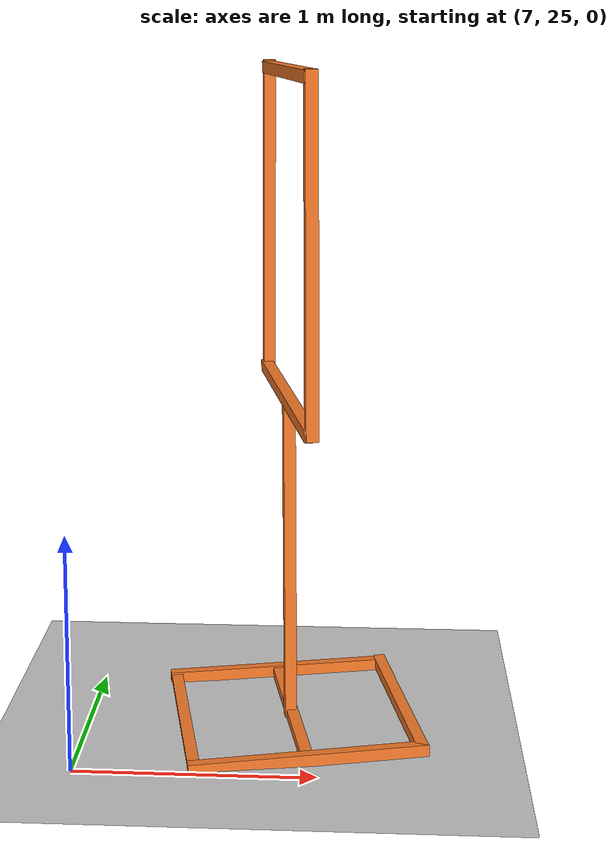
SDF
<sdf version="1.6">
 <world name="default">
  <model name="ground_plane">
   <static>1</static>
   <link name="link">
    <collision name="collision">
     <geometry><plane><normal>0 0 1</normal><size>100 100</size></plane></geometry>
     <surface><friction><ode><mu>100</mu><mu2>50</mu2></ode></friction></surface>
    </collision>
    <visual name="visual">
     <cast_shadows>0</cast_shadows>
     <geometry><plane><normal>0 0 1</normal><size>100 100</size></plane></geometry>
     <material>
      <script><uri>file://media/materials/scripts/gazebo.material</uri><name>Gazebo/Grey</name></script>
     </material>
    </visual>
    <velocity_decay><linear>0</linear><angular>0</angular></velocity_decay>
   </link>
  </model>
  <model name="closed_gate_clone_clone_clone_3_clone">
   <link name="link">
    <inertial>
     <mass>1</mass>
     <inertia>
      <ixx>0.166667</ixx>
      <ixy>0</ixy>
      <ixz>0</ixz>
      <iyy>0.166667</iyy>
      <iyz>0</iyz>
      <izz>0.166667</izz>
     </inertia>
    </inertial>
    <pose>0.404756 -0.715724 1.41623 0 -0 0</pose>
    <visual name="visual">
     <geometry><box><size>0.05 0.05 1.4</size></box></geometry>
     <material>
      <script><name>Gazebo/Grey</name><uri>file://media/materials/scripts/gazebo.material</uri></script>
      <shader type="vertex"><normal_map>__default__</normal_map></shader>
      <ambient>0.976 0.484 0.164 1</ambient>
      <diffuse>0.976 0.484 0.164 1</diffuse>
      <specular>0.01 0.01 0.01 1</specular>
      <emissive>0 0 0 1</emissive>
     </material>
    </visual>
    <collision name="collision">
     <geometry><box><size>0.05 0.05 1.4</size></box></geometry>
     <surface>
      <friction>
       <ode><mu>1</mu><mu2>1</mu2><fdir1>0 0 0</fdir1><slip1>0</slip1><slip2>0</slip2></ode>
       <torsional>
        <coefficient>1</coefficient>
        <patch_radius>0</patch_radius>
        <surface_radius>0</surface_radius>
        <use_patch_radius>1</use_patch_radius>
        <ode><slip>0</slip></ode>
       </torsional>
      </friction>
      <bounce><restitution_coefficient>0</restitution_coefficient><threshold>1e+06</threshold></bounce>
      <contact>
       <collide_without_contact>0</collide_without_contact>
       <collide_without_contact_bitmask>1</collide_without_contact_bitmask>
       <collide_bitmask>1</collide_bitmask>
       <ode>
        <soft_cfm>0</soft_cfm>
        <soft_erp>0.2</soft_erp>
        <kp>1e+13</kp>
        <kd>1</kd>
        <max_vel>0.01</max_vel>
        <min_depth>0</min_depth>
       </ode>
       <bullet>
        <split_impulse>1</split_impulse>
        <split_impulse_penetration_threshold>-0.01</split_impulse_penetration_threshold>
        <soft_cfm>0</soft_cfm>
        <soft_erp>0.2</soft_erp>
        <kp>1e+13</kp>
        <kd>1</kd>
       </bullet>
      </contact>
     </surface>
    </collision>
   </link>
   <link name="link_clone_0_clone_0">
    <inertial>
     <mass>1</mass>
     <inertia>
      <ixx>0.166667</ixx>
      <ixy>0</ixy>
      <ixz>0</ixz>
      <iyy>0.166667</iyy>
      <iyz>0</iyz>
      <izz>0.166667</izz>
     </inertia>
    </inertial>
    <pose>1.11096 -0.693594 -0.667388 -1.57955 0.044957 -1.56415</pose>
    <visual name="visual">
     <geometry><box><size>0.05 0.05 1</size></box></geometry>
     <material>
      <script><name>Gazebo/Grey</name><uri>file://media/materials/scripts/gazebo.material</uri></script>
      <shader type="vertex"><normal_map>__default__</normal_map></shader>
      <ambient>0.976 0.484 0.164 1</ambient>
      <diffuse>0.976 0.484 0.164 1</diffuse>
      <specular>0.01 0.01 0.01 1</specular>
      <emissive>0 0 0 1</emissive>
     </material>
    </visual>
    <collision name="collision">
     <geometry><box><size>0.05 0.05 1</size></box></geometry>
     <surface>
      <friction>
       <ode><mu>1</mu><mu2>1</mu2><fdir1>0 0 0</fdir1><slip1>0</slip1><slip2>0</slip2></ode>
       <torsional>
        <coefficient>1</coefficient>
        <patch_radius>0</patch_radius>
        <surface_radius>0</surface_radius>
        <use_patch_radius>1</use_patch_radius>
        <ode><slip>0</slip></ode>
       </torsional>
      </friction>
      <bounce><restitution_coefficient>0</restitution_coefficient><threshold>1e+06</threshold></bounce>
      <contact>
       <collide_without_contact>0</collide_without_contact>
       <collide_without_contact_bitmask>1</collide_without_contact_bitmask>
       <collide_bitmask>1</collide_bitmask>
       <ode>
        <soft_cfm>0</soft_cfm>
        <soft_erp>0.2</soft_erp>
        <kp>1e+13</kp>
        <kd>1</kd>
        <max_vel>0.01</max_vel>
        <min_depth>0</min_depth>
       </ode>
       <bullet>
        <split_impulse>1</split_impulse>
        <split_impulse_penetration_threshold>-0.01</split_impulse_penetration_threshold>
        <soft_cfm>0</soft_cfm>
        <soft_erp>0.2</soft_erp>
        <kp>1e+13</kp>
        <kd>1</kd>
       </bullet>
      </contact>
     </surface>
    </collision>
   </link>
   <link name="link_clone_0_clone_0_clone">
    <inertial>
     <mass>1</mass>
     <inertia>
      <ixx>0.166667</ixx>
      <ixy>0</ixy>
      <ixz>0</ixz>
      <iyy>0.166667</iyy>
      <iyz>0</iyz>
      <izz>0.166667</izz>
     </inertia>
    </inertial>
    <pose>0.637485 -0.695511 -0.656732 -1.55146 -0.019345 0.017432</pose>
    <visual name="visual">
     <geometry><box><size>0.05 0.05 1</size></box></geometry>
     <material>
      <script><name>Gazebo/Grey</name><uri>file://media/materials/scripts/gazebo.material</uri></script>
      <shader type="vertex"><normal_map>__default__</normal_map></shader>
      <ambient>0.976 0.484 0.164 1</ambient>
      <diffuse>0.976 0.484 0.164 1</diffuse>
      <specular>0.01 0.01 0.01 1</specular>
      <emissive>0 0 0 1</emissive>
     </material>
    </visual>
    <collision name="collision">
     <geometry><box><size>0.05 0.05 1</size></box></geometry>
     <surface>
      <friction>
       <ode><mu>1</mu><mu2>1</mu2><fdir1>0 0 0</fdir1><slip1>0</slip1><slip2>0</slip2></ode>
       <torsional>
        <coefficient>1</coefficient>
        <patch_radius>0</patch_radius>
        <surface_radius>0</surface_radius>
        <use_patch_radius>1</use_patch_radius>
        <ode><slip>0</slip></ode>
       </torsional>
      </friction>
      <bounce><restitution_coefficient>0</restitution_coefficient><threshold>1e+06</threshold></bounce>
      <contact>
       <collide_without_contact>0</collide_without_contact>
       <collide_without_contact_bitmask>1</collide_without_contact_bitmask>
       <collide_bitmask>1</collide_bitmask>
       <ode>
        <soft_cfm>0</soft_cfm>
        <soft_erp>0.2</soft_erp>
        <kp>1e+13</kp>
        <kd>1</kd>
        <max_vel>0.01</max_vel>
        <min_depth>0</min_depth>
       </ode>
       <bullet>
        <split_impulse>1</split_impulse>
        <split_impulse_penetration_threshold>-0.01</split_impulse_penetration_threshold>
        <soft_cfm>0</soft_cfm>
        <soft_erp>0.2</soft_erp>
        <kp>1e+13</kp>
        <kd>1</kd>
       </bullet>
      </contact>
     </surface>
    </collision>
   </link>
   <link name="link_clone_0_clone_0_clone_0">
    <inertial>
     <mass>1</mass>
     <inertia>
      <ixx>0.166667</ixx>
      <ixy>0</ixy>
      <ixz>0</ixz>
      <iyy>0.166667</iyy>
      <iyz>0</iyz>
      <izz>0.166667</izz>
     </inertia>
    </inertial>
    <pose>1.12077 -1.16283 -0.677317 -1.57839 0.053451 -1.56287</pose>
    <visual name="visual">
     <geometry><box><size>0.05 0.05 1</size></box></geometry>
     <material>
      <script><name>Gazebo/Grey</name><uri>file://media/materials/scripts/gazebo.material</uri></script>
      <shader type="vertex"><normal_map>__default__</normal_map></shader>
      <ambient>0.976 0.484 0.164 1</ambient>
      <diffuse>0.976 0.484 0.164 1</diffuse>
      <specular>0.01 0.01 0.01 1</specular>
      <emissive>0 0 0 1</emissive>
     </material>
    </visual>
    <collision name="collision">
     <geometry><box><size>0.05 0.05 1</size></box></geometry>
     <surface>
      <friction>
       <ode><mu>1</mu><mu2>1</mu2><fdir1>0 0 0</fdir1><slip1>0</slip1><slip2>0</slip2></ode>
       <torsional>
        <coefficient>1</coefficient>
        <patch_radius>0</patch_radius>
        <surface_radius>0</surface_radius>
        <use_patch_radius>1</use_patch_radius>
        <ode><slip>0</slip></ode>
       </torsional>
      </friction>
      <bounce><restitution_coefficient>0</restitution_coefficient><threshold>1e+06</threshold></bounce>
      <contact>
       <collide_without_contact>0</collide_without_contact>
       <collide_without_contact_bitmask>1</collide_without_contact_bitmask>
       <collide_bitmask>1</collide_bitmask>
       <ode>
        <soft_cfm>0</soft_cfm>
        <soft_erp>0.2</soft_erp>
        <kp>1e+13</kp>
        <kd>1</kd>
        <max_vel>0.01</max_vel>
        <min_depth>0</min_depth>
       </ode>
       <bullet>
        <split_impulse>1</split_impulse>
        <split_impulse_penetration_threshold>-0.01</split_impulse_penetration_threshold>
        <soft_cfm>0</soft_cfm>
        <soft_erp>0.2</soft_erp>
        <kp>1e+13</kp>
        <kd>1</kd>
       </bullet>
      </contact>
     </surface>
    </collision>
   </link>
   <link name="link_clone_0_clone_0_clone_2">
    <inertial>
     <mass>1</mass>
     <inertia>
      <ixx>0.166667</ixx>
      <ixy>0</ixy>
      <ixz>0</ixz>
      <iyy>0.166667</iyy>
      <iyz>0</iyz>
      <izz>0.166667</izz>
     </inertia>
    </inertial>
    <pose>1.10088 -0.214462 -0.645898 -1.57451 0.053447 -1.56287</pose>
    <visual name="visual">
     <geometry><box><size>0.05 0.05 1</size></box></geometry>
     <material>
      <script><name>Gazebo/Grey</name><uri>file://media/materials/scripts/gazebo.material</uri></script>
      <shader type="vertex"><normal_map>__default__</normal_map></shader>
      <ambient>0.976 0.484 0.164 1</ambient>
      <diffuse>0.976 0.484 0.164 1</diffuse>
      <specular>0.01 0.01 0.01 1</specular>
      <emissive>0 0 0 1</emissive>
     </material>
    </visual>
    <collision name="collision">
     <geometry><box><size>0.05 0.05 1</size></box></geometry>
     <surface>
      <friction>
       <ode><mu>1</mu><mu2>1</mu2><fdir1>0 0 0</fdir1><slip1>0</slip1><slip2>0</slip2></ode>
       <torsional>
        <coefficient>1</coefficient>
        <patch_radius>0</patch_radius>
        <surface_radius>0</surface_radius>
        <use_patch_radius>1</use_patch_radius>
        <ode><slip>0</slip></ode>
       </torsional>
      </friction>
      <bounce><restitution_coefficient>0</restitution_coefficient><threshold>1e+06</threshold></bounce>
      <contact>
       <collide_without_contact>0</collide_without_contact>
       <collide_without_contact_bitmask>1</collide_without_contact_bitmask>
       <collide_bitmask>1</collide_bitmask>
       <ode>
        <soft_cfm>0</soft_cfm>
        <soft_erp>0.2</soft_erp>
        <kp>1e+13</kp>
        <kd>1</kd>
        <max_vel>0.01</max_vel>
        <min_depth>0</min_depth>
       </ode>
       <bullet>
        <split_impulse>1</split_impulse>
        <split_impulse_penetration_threshold>-0.01</split_impulse_penetration_threshold>
        <soft_cfm>0</soft_cfm>
        <soft_erp>0.2</soft_erp>
        <kp>1e+13</kp>
        <kd>1</kd>
       </bullet>
      </contact>
     </surface>
    </collision>
   </link>
   <link name="link_clone_0_clone_0_clone_clone">
    <inertial>
     <mass>1</mass>
     <inertia>
      <ixx>0.166667</ixx>
      <ixy>0</ixy>
      <ixz>0</ixz>
      <iyy>0.166667</iyy>
      <iyz>0</iyz>
      <izz>0.166667</izz>
     </inertia>
    </inertial>
    <pose>1.59453 -0.684923 -0.663241 -1.53838 -0.023075 0.018345</pose>
    <visual name="visual">
     <geometry><box><size>0.05 0.05 1</size></box></geometry>
     <material>
      <script><name>Gazebo/Grey</name><uri>file://media/materials/scripts/gazebo.material</uri></script>
      <shader type="vertex"><normal_map>__default__</normal_map></shader>
      <ambient>0.976 0.484 0.164 1</ambient>
      <diffuse>0.976 0.484 0.164 1</diffuse>
      <specular>0.01 0.01 0.01 1</specular>
      <emissive>0 0 0 1</emissive>
     </material>
    </visual>
    <collision name="collision">
     <geometry><box><size>0.05 0.05 1</size></box></geometry>
     <surface>
      <friction>
       <ode><mu>1</mu><mu2>1</mu2><fdir1>0 0 0</fdir1><slip1>0</slip1><slip2>0</slip2></ode>
       <torsional>
        <coefficient>1</coefficient>
        <patch_radius>0</patch_radius>
        <surface_radius>0</surface_radius>
        <use_patch_radius>1</use_patch_radius>
        <ode><slip>0</slip></ode>
       </torsional>
      </friction>
      <bounce><restitution_coefficient>0</restitution_coefficient><threshold>1e+06</threshold></bounce>
      <contact>
       <collide_without_contact>0</collide_without_contact>
       <collide_without_contact_bitmask>1</collide_without_contact_bitmask>
       <collide_bitmask>1</collide_bitmask>
       <ode>
        <soft_cfm>0</soft_cfm>
        <soft_erp>0.2</soft_erp>
        <kp>1e+13</kp>
        <kd>1</kd>
        <max_vel>0.01</max_vel>
        <min_depth>0</min_depth>
       </ode>
       <bullet>
        <split_impulse>1</split_impulse>
        <split_impulse_penetration_threshold>-0.01</split_impulse_penetration_threshold>
        <soft_cfm>0</soft_cfm>
        <soft_erp>0.2</soft_erp>
        <kp>1e+13</kp>
        <kd>1</kd>
       </bullet>
      </contact>
     </surface>
    </collision>
   </link>
   <link name="link_clone_0_clone_1">
    <inertial>
     <mass>1</mass>
     <inertia>
      <ixx>0.166667</ixx>
      <ixy>0</ixy>
      <ixz>0</ixz>
      <iyy>0.166667</iyy>
      <iyz>0</iyz>
      <izz>0.166667</izz>
     </inertia>
    </inertial>
    <pose>1.08198 -0.717602 0.744079 -1.56201 0.04483 -1.56244</pose>
    <visual name="visual">
     <geometry><box><size>0.05 0.05 1.4</size></box></geometry>
     <material>
      <script><name>Gazebo/Grey</name><uri>file://media/materials/scripts/gazebo.material</uri></script>
      <shader type="vertex"><normal_map>__default__</normal_map></shader>
      <ambient>0.976 0.484 0.164 1</ambient>
      <diffuse>0.976 0.484 0.164 1</diffuse>
      <specular>0.01 0.01 0.01 1</specular>
      <emissive>0 0 0 1</emissive>
     </material>
    </visual>
    <collision name="collision">
     <geometry><box><size>0.05 0.05 1.4</size></box></geometry>
     <surface>
      <friction>
       <ode><mu>1</mu><mu2>1</mu2><fdir1>0 0 0</fdir1><slip1>0</slip1><slip2>0</slip2></ode>
       <torsional>
        <coefficient>1</coefficient>
        <patch_radius>0</patch_radius>
        <surface_radius>0</surface_radius>
        <use_patch_radius>1</use_patch_radius>
        <ode><slip>0</slip></ode>
       </torsional>
      </friction>
      <bounce><restitution_coefficient>0</restitution_coefficient><threshold>1e+06</threshold></bounce>
      <contact>
       <collide_without_contact>0</collide_without_contact>
       <collide_without_contact_bitmask>1</collide_without_contact_bitmask>
       <collide_bitmask>1</collide_bitmask>
       <ode>
        <soft_cfm>0</soft_cfm>
        <soft_erp>0.2</soft_erp>
        <kp>1e+13</kp>
        <kd>1</kd>
        <max_vel>0.01</max_vel>
        <min_depth>0</min_depth>
       </ode>
       <bullet>
        <split_impulse>1</split_impulse>
        <split_impulse_penetration_threshold>-0.01</split_impulse_penetration_threshold>
        <soft_cfm>0</soft_cfm>
        <soft_erp>0.2</soft_erp>
        <kp>1e+13</kp>
        <kd>1</kd>
       </bullet>
      </contact>
     </surface>
    </collision>
   </link>
   <link name="link_clone_0_clone_1_clone">
    <inertial>
     <mass>1</mass>
     <inertia>
      <ixx>0.166667</ixx>
      <ixy>0</ixy>
      <ixz>0</ixz>
      <iyy>0.166667</iyy>
      <iyz>0</iyz>
      <izz>0.166667</izz>
     </inertia>
    </inertial>
    <pose>1.07529 -0.719849 2.09328 -1.55888 0.053444 -1.57124</pose>
    <visual name="visual">
     <geometry><box><size>0.05 0.05 1.4</size></box></geometry>
     <material>
      <script><name>Gazebo/Grey</name><uri>file://media/materials/scripts/gazebo.material</uri></script>
      <shader type="vertex"><normal_map>__default__</normal_map></shader>
      <ambient>0.976 0.484 0.164 1</ambient>
      <diffuse>0.976 0.484 0.164 1</diffuse>
      <specular>0.01 0.01 0.01 1</specular>
      <emissive>0 0 0 1</emissive>
     </material>
    </visual>
    <collision name="collision">
     <geometry><box><size>0.05 0.05 1.4</size></box></geometry>
     <surface>
      <friction>
       <ode><mu>1</mu><mu2>1</mu2><fdir1>0 0 0</fdir1><slip1>0</slip1><slip2>0</slip2></ode>
       <torsional>
        <coefficient>1</coefficient>
        <patch_radius>0</patch_radius>
        <surface_radius>0</surface_radius>
        <use_patch_radius>1</use_patch_radius>
        <ode><slip>0</slip></ode>
       </torsional>
      </friction>
      <bounce><restitution_coefficient>0</restitution_coefficient><threshold>1e+06</threshold></bounce>
      <contact>
       <collide_without_contact>0</collide_without_contact>
       <collide_without_contact_bitmask>1</collide_without_contact_bitmask>
       <collide_bitmask>1</collide_bitmask>
       <ode>
        <soft_cfm>0</soft_cfm>
        <soft_erp>0.2</soft_erp>
        <kp>1e+13</kp>
        <kd>1</kd>
        <max_vel>0.01</max_vel>
        <min_depth>0</min_depth>
       </ode>
       <bullet>
        <split_impulse>1</split_impulse>
        <split_impulse_penetration_threshold>-0.01</split_impulse_penetration_threshold>
        <soft_cfm>0</soft_cfm>
        <soft_erp>0.2</soft_erp>
        <kp>1e+13</kp>
        <kd>1</kd>
       </bullet>
      </contact>
     </surface>
    </collision>
   </link>
   <link name="link_clone_1">
    <inertial>
     <mass>1</mass>
     <inertia>
      <ixx>0.166667</ixx>
      <ixy>0</ixy>
      <ixz>0</ixz>
      <iyy>0.166667</iyy>
      <iyz>0</iyz>
      <izz>0.166667</izz>
     </inertia>
    </inertial>
    <pose>1.11167 -0.706269 0.02254 0.008527 -0.003582 0.001077</pose>
    <visual name="visual">
     <geometry><box><size>0.05 0.05 1.4</size></box></geometry>
     <material>
      <script><name>Gazebo/Grey</name><uri>file://media/materials/scripts/gazebo.material</uri></script>
      <shader type="vertex"><normal_map>__default__</normal_map></shader>
      <ambient>0.976 0.484 0.164 1</ambient>
      <diffuse>0.976 0.484 0.164 1</diffuse>
      <specular>0.01 0.01 0.01 1</specular>
      <emissive>0 0 0 1</emissive>
     </material>
    </visual>
    <collision name="collision">
     <geometry><box><size>0.05 0.05 1.4</size></box></geometry>
     <surface>
      <friction>
       <ode><mu>1</mu><mu2>1</mu2><fdir1>0 0 0</fdir1><slip1>0</slip1><slip2>0</slip2></ode>
       <torsional>
        <coefficient>1</coefficient>
        <patch_radius>0</patch_radius>
        <surface_radius>0</surface_radius>
        <use_patch_radius>1</use_patch_radius>
        <ode><slip>0</slip></ode>
       </torsional>
      </friction>
      <bounce><restitution_coefficient>0</restitution_coefficient><threshold>1e+06</threshold></bounce>
      <contact>
       <collide_without_contact>0</collide_without_contact>
       <collide_without_contact_bitmask>1</collide_without_contact_bitmask>
       <collide_bitmask>1</collide_bitmask>
       <ode>
        <soft_cfm>0</soft_cfm>
        <soft_erp>0.2</soft_erp>
        <kp>1e+13</kp>
        <kd>1</kd>
        <max_vel>0.01</max_vel>
        <min_depth>0</min_depth>
       </ode>
       <bullet>
        <split_impulse>1</split_impulse>
        <split_impulse_penetration_threshold>-0.01</split_impulse_penetration_threshold>
        <soft_cfm>0</soft_cfm>
        <soft_erp>0.2</soft_erp>
        <kp>1e+13</kp>
        <kd>1</kd>
       </bullet>
      </contact>
     </surface>
    </collision>
   </link>
   <link name="link_clone_7">
    <inertial>
     <mass>1</mass>
     <inertia>
      <ixx>0.166667</ixx>
      <ixy>0</ixy>
      <ixz>0</ixz>
      <iyy>0.166667</iyy>
      <iyz>0</iyz>
      <izz>0.166667</izz>
     </inertia>
    </inertial>
    <pose>1.75876 -0.711707 1.42733 0.008527 -0.003582 0.001077</pose>
    <visual name="visual">
     <geometry><box><size>0.05 0.05 1.4</size></box></geometry>
     <material>
      <script><name>Gazebo/Grey</name><uri>file://media/materials/scripts/gazebo.material</uri></script>
      <shader type="vertex"><normal_map>__default__</normal_map></shader>
      <ambient>0.976 0.484 0.164 1</ambient>
      <diffuse>0.976 0.484 0.164 1</diffuse>
      <specular>0.01 0.01 0.01 1</specular>
      <emissive>0 0 0 1</emissive>
     </material>
    </visual>
    <collision name="collision">
     <geometry><box><size>0.05 0.05 1.4</size></box></geometry>
     <surface>
      <friction>
       <ode><mu>1</mu><mu2>1</mu2><fdir1>0 0 0</fdir1><slip1>0</slip1><slip2>0</slip2></ode>
       <torsional>
        <coefficient>1</coefficient>
        <patch_radius>0</patch_radius>
        <surface_radius>0</surface_radius>
        <use_patch_radius>1</use_patch_radius>
        <ode><slip>0</slip></ode>
       </torsional>
      </friction>
      <bounce><restitution_coefficient>0</restitution_coefficient><threshold>1e+06</threshold></bounce>
      <contact>
       <collide_without_contact>0</collide_without_contact>
       <collide_without_contact_bitmask>1</collide_without_contact_bitmask>
       <collide_bitmask>1</collide_bitmask>
       <ode>
        <soft_cfm>0</soft_cfm>
        <soft_erp>0.2</soft_erp>
        <kp>1e+13</kp>
        <kd>1</kd>
        <max_vel>0.01</max_vel>
        <min_depth>0</min_depth>
       </ode>
       <bullet>
        <split_impulse>1</split_impulse>
        <split_impulse_penetration_threshold>-0.01</split_impulse_penetration_threshold>
        <soft_cfm>0</soft_cfm>
        <soft_erp>0.2</soft_erp>
        <kp>1e+13</kp>
        <kd>1</kd>
       </bullet>
      </contact>
     </surface>
    </collision>
   </link>
   <static>1</static>
   <pose>8.36925 26.8224 0.68342 0 0 -1.40145</pose>
  </model>
 </world>
</sdf>
